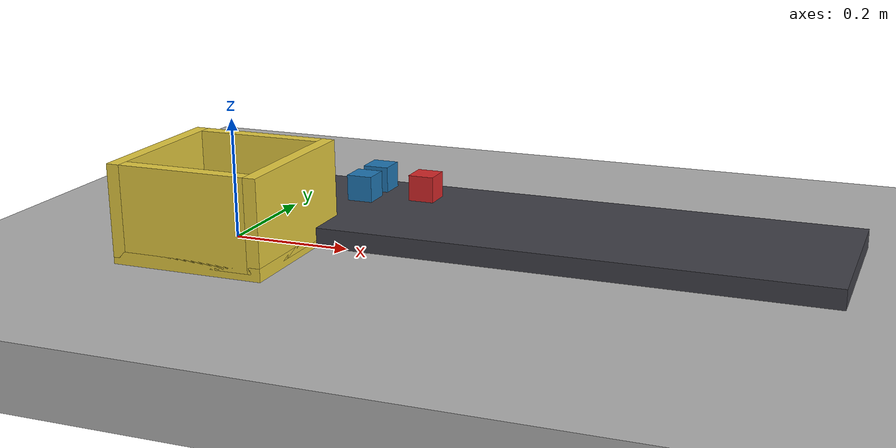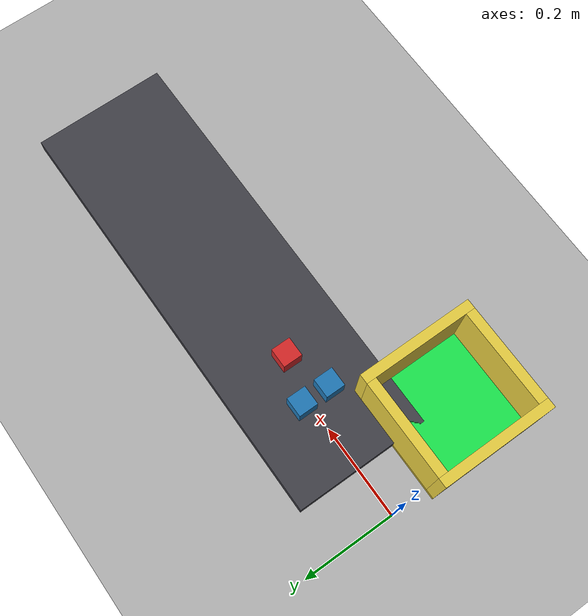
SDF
<?xml version="1.0" ?>
<sdf version="1.7">
  <world name="two_target_delivery">
    <gravity>0 0 -9.8</gravity>
    <physics type="ode">
      <max_step_size>0.001</max_step_size>
      <real_time_update_rate>1000</real_time_update_rate>
      <real_time_factor>1.0</real_time_factor>
    </physics>
    <include>
      <uri>model://sun</uri>
    </include>

    <model name="table">
      <static>true</static>
      <pose>0 0 0 0 0 0</pose>
      <link name="base_link">
        <collision name="table_collision">
          <geometry>
            <box>
              <size>3.0 2.0 0.1</size>
            </box>
          </geometry>
        </collision>
        <visual name="table_visual">
          <geometry>
            <box>
              <size>3.0 2.0 0.1</size>
            </box>
          </geometry>
          <material>
            <ambient>0.7 0.7 0.7 1</ambient>
            <diffuse>0.7 0.7 0.7 1</diffuse>
          </material>
        </visual>
      </link>
    </model>

    <model name="conveyor_belt">
      <static>true</static>
      <pose>0.55 0.0 0.04 0 0 0</pose>
      <link name="link">
        <collision name="collision">
          <geometry>
            <box><size>0.9 0.28 0.08</size></box>
          </geometry>
        </collision>
        <visual name="visual">
          <geometry>
            <box><size>0.9 0.28 0.08</size></box>
          </geometry>
          <material>
            <ambient>0.25 0.25 0.28 1</ambient>
            <diffuse>0.25 0.25 0.28 1</diffuse>
          </material>
        </visual>
      </link>
    </model>

    <model name="target_blue_00"><static>true</static><pose>0.25 -0.03 0.12 0 0 0</pose><link name="link"><visual name="visual"><geometry><box><size>0.04 0.04 0.04</size></box></geometry><material><ambient>0.122 0.467 0.706 1</ambient><diffuse>0.122 0.467 0.706 1</diffuse></material></visual></link></model>
    <model name="target_blue_01"><static>true</static><pose>0.25 0.03 0.12 0 0 0</pose><link name="link"><visual name="visual"><geometry><box><size>0.04 0.04 0.04</size></box></geometry><material><ambient>0.122 0.467 0.706 1</ambient><diffuse>0.122 0.467 0.706 1</diffuse></material></visual></link></model>
    <model name="distractor_red"><static>true</static><pose>0.34 0.00 0.12 0 0 0</pose><link name="link"><visual name="visual"><geometry><box><size>0.04 0.04 0.04</size></box></geometry><material><ambient>0.839 0.153 0.157 1</ambient><diffuse>0.839 0.153 0.157 1</diffuse></material></visual></link></model>

    <model name="goal_zone">
      <pose>0.10 -0.19 0.055 0 0 0</pose>
      <static>true</static>
      <link name="link">
        <visual name="visual">
          <geometry>
            <box><size>0.2 0.2 0.05</size></box>
          </geometry>
          <material>
            <ambient>0.1 0.9 0.3 1</ambient>
            <diffuse>0.1 0.9 0.3 1</diffuse>
          </material>
        </visual>
      </link>
    </model>

    <model name="box_goal">
      <static>true</static>
      <pose>0.10 -0.19 0 0 0 0</pose>
      <link name="link">
        <collision name="floor_collision">
          <geometry>
            <box><size>0.24 0.24 0.02</size></box>
          </geometry>
          <pose>0 0 0.06 0 0 0</pose>
        </collision>
        <collision name="wall_x_positive_collision">
          <geometry>
            <box><size>0.02 0.24 0.14</size></box>
          </geometry>
          <pose>0.11 0 0.13 0 0 0</pose>
        </collision>
        <collision name="wall_x_negative_collision">
          <geometry>
            <box><size>0.02 0.24 0.14</size></box>
          </geometry>
          <pose>-0.11 0 0.13 0 0 0</pose>
        </collision>
        <collision name="wall_y_positive_collision">
          <geometry>
            <box><size>0.20 0.02 0.14</size></box>
          </geometry>
          <pose>0 0.11 0.13 0 0 0</pose>
        </collision>
        <collision name="wall_y_negative_collision">
          <geometry>
            <box><size>0.20 0.02 0.14</size></box>
          </geometry>
          <pose>0 -0.11 0.13 0 0 0</pose>
        </collision>
        <visual name="floor_visual">
          <geometry>
            <box><size>0.24 0.24 0.02</size></box>
          </geometry>
          <pose>0 0 0.06 0 0 0</pose>
          <material>
            <ambient>0.9 0.8 0.25 1</ambient>
            <diffuse>0.9 0.8 0.25 1</diffuse>
          </material>
        </visual>
        <visual name="wall_x_positive_visual">
          <geometry><box><size>0.02 0.24 0.14</size></box></geometry>
          <pose>0.11 0 0.13 0 0 0</pose>
          <material><ambient>0.9 0.8 0.25 1</ambient><diffuse>0.9 0.8 0.25 1</diffuse></material>
        </visual>
        <visual name="wall_x_negative_visual">
          <geometry><box><size>0.02 0.24 0.14</size></box></geometry>
          <pose>-0.11 0 0.13 0 0 0</pose>
          <material><ambient>0.9 0.8 0.25 1</ambient><diffuse>0.9 0.8 0.25 1</diffuse></material>
        </visual>
        <visual name="wall_y_positive_visual">
          <geometry><box><size>0.20 0.02 0.14</size></box></geometry>
          <pose>0 0.11 0.13 0 0 0</pose>
          <material><ambient>0.9 0.8 0.25 1</ambient><diffuse>0.9 0.8 0.25 1</diffuse></material>
        </visual>
        <visual name="wall_y_negative_visual">
          <geometry><box><size>0.20 0.02 0.14</size></box></geometry>
          <pose>0 -0.11 0.13 0 0 0</pose>
          <material>
            <ambient>0.9 0.8 0.25 1</ambient>
            <diffuse>0.9 0.8 0.25 1</diffuse>
          </material>
        </visual>
      </link>
    </model>

    <model name="camera_mount">
      <static>true</static>
      <pose>0.55 0.15 1.4 0 1.5708 0</pose>
      <link name="camera_link">
        <sensor type="camera" name="color_camera">
          <always_on>true</always_on>
          <update_rate>10</update_rate>
          <visualize>true</visualize>
          <camera name="color">
            <horizontal_fov>1.3962634</horizontal_fov>
            <image>
              <width>640</width>
              <height>480</height>
              <format>R8G8B8</format>
            </image>
            <clip>
              <near>0.02</near>
              <far>10.0</far>
            </clip>
          </camera>
          <plugin name="camera_controller" filename="libgazebo_ros_camera.so">
            <ros>
              <namespace>/camera</namespace>
              <remapping>image_raw:=color/image_raw</remapping>
              <remapping>camera_info:=color/camera_info</remapping>
            </ros>
            <camera_name>color</camera_name>
            <frame_name>camera_link</frame_name>
          </plugin>
        </sensor>
      </link>
    </model>

    <plugin name="gazebo_ros_state" filename="libgazebo_ros_state.so">
      <ros>
        <namespace>/gazebo</namespace>
      </ros>
    </plugin>
  </world>
</sdf>
